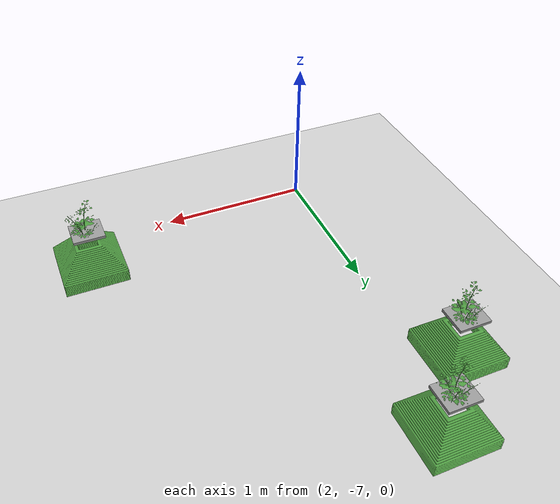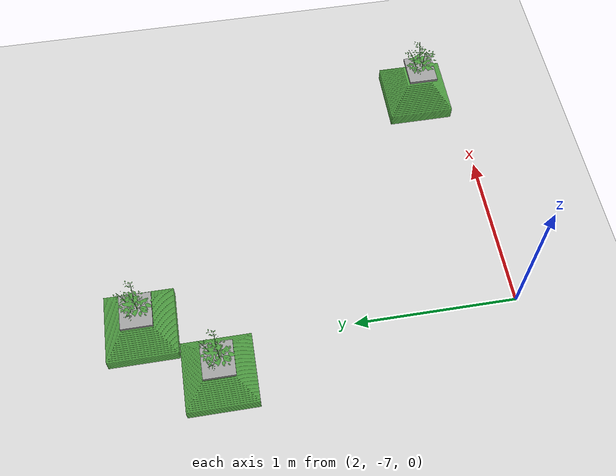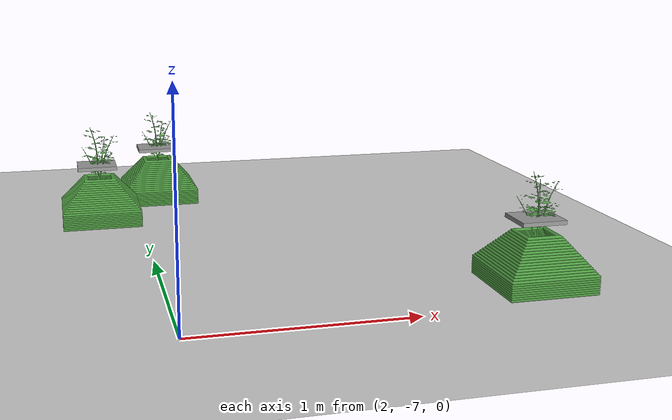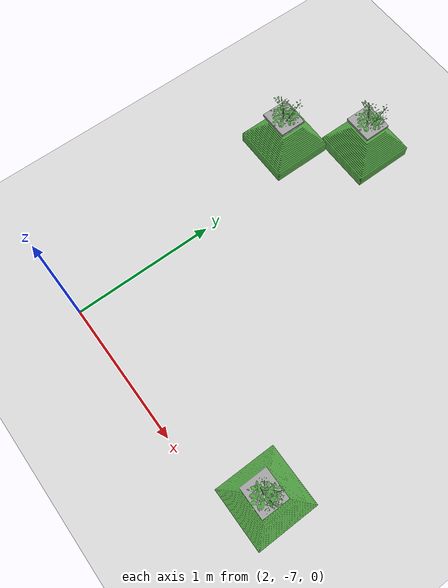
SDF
<sdf version="1.6">
 <world name="default">
  <model name="ground_plane">
   <static>1</static>
   <link name="link">
    <collision name="collision">
     <geometry><plane><normal>0 0 1</normal><size>100 100</size></plane></geometry>
     <surface><friction><ode><mu>100</mu><mu2>50</mu2></ode></friction></surface>
    </collision>
    <visual name="visual">
     <cast_shadows>0</cast_shadows>
     <geometry><plane><normal>0 0 1</normal><size>100 100</size></plane></geometry>
     <material>
      <script><uri>file://media/materials/scripts/gazebo.material</uri><name>Gazebo/Grey</name></script>
     </material>
    </visual>
   </link>
  </model>
  <model name="plant_120">
   <link name="link_0">
    <inertial>
     <mass>1</mass>
     <inertia>
      <ixx>0.0134051</ixx>
      <ixy>0</ixy>
      <ixz>0</ixz>
      <iyy>0.0134051</iyy>
      <iyz>0</iyz>
      <izz>0.0254102</izz>
     </inertia>
    </inertial>
    <gravity>0</gravity>
    <visual name="visual">
     <geometry><mesh><uri>model://square_pot/pot.stl</uri><scale>0.033 0.033 0.02</scale></mesh></geometry>
     <material>
      <lighting>1</lighting>
      <script><uri>file://media/materials/scripts/gazebo.material</uri><name>Gazebo/Grass</name></script>
      <ambient>0.3 0.3 0.3 1</ambient>
      <diffuse>0.7 0.7 0.7 1</diffuse>
      <specular>0.01 0.01 0.01 1</specular>
      <emissive>0 0 0 1</emissive>
      <shader type="vertex"><normal_map>__default__</normal_map></shader>
     </material>
    </visual>
    <collision name="collision">
     <pose>0 0 0.25 0 -0 0</pose>
     <geometry><box><size>0.4 0.4 0.4</size></box></geometry>
     <surface>
      <friction>
       <ode><mu>1</mu><mu2>1</mu2><fdir1>0 0 0</fdir1><slip1>0</slip1><slip2>0</slip2></ode>
       <torsional>
        <coefficient>1</coefficient>
        <patch_radius>0</patch_radius>
        <surface_radius>0</surface_radius>
        <use_patch_radius>1</use_patch_radius>
        <ode><slip>0</slip></ode>
       </torsional>
      </friction>
      <bounce><restitution_coefficient>0</restitution_coefficient><threshold>1e+06</threshold></bounce>
      <contact>
       <collide_without_contact>1</collide_without_contact>
       <collide_without_contact_bitmask>1</collide_without_contact_bitmask>
       <collide_bitmask>1</collide_bitmask>
       <ode>
        <soft_cfm>0</soft_cfm>
        <soft_erp>0.2</soft_erp>
        <kp>1e+13</kp>
        <kd>1</kd>
        <max_vel>0.01</max_vel>
        <min_depth>0</min_depth>
       </ode>
       <bullet>
        <split_impulse>1</split_impulse>
        <split_impulse_penetration_threshold>-0.01</split_impulse_penetration_threshold>
        <soft_cfm>0</soft_cfm>
        <soft_erp>0.2</soft_erp>
        <kp>1e+13</kp>
        <kd>1</kd>
       </bullet>
      </contact>
     </surface>
    </collision>
   </link>
   <link name="link_0_0">
    <pose>-0.011441 -0.008338 0.308474 0 -0 0</pose>
    <inertial>
     <mass>0.000736153</mass>
     <inertia>
      <ixx>2.11165e-06</ixx>
      <ixy>0</ixy>
      <ixz>0</ixz>
      <iyy>2.64382e-06</iyy>
      <iyz>0</iyz>
      <izz>4.70976e-06</izz>
     </inertia>
    </inertial>
    <visual name="visual">
     <geometry><box><size>0.206678 0.18452 0.019291</size></box></geometry>
     <material>
      <lighting>1</lighting>
      <script><uri>file://media/materials/scripts/gazebo.material</uri><name>Gazebo/Grey</name></script>
      <ambient>0.3 0.3 0.3 1</ambient>
      <diffuse>0.7 0.7 0.7 1</diffuse>
      <specular>0.01 0.01 0.01 1</specular>
      <emissive>0 0 0 1</emissive>
     </material>
    </visual>
    <collision name="collision">
     <geometry><box><size>0.206678 0.18452 0.019291</size></box></geometry>
     <surface>
      <friction>
       <ode><mu>1</mu><mu2>1</mu2><fdir1>0 0 0</fdir1><slip1>0</slip1><slip2>0</slip2></ode>
       <torsional>
        <coefficient>1</coefficient>
        <patch_radius>0</patch_radius>
        <surface_radius>0</surface_radius>
        <use_patch_radius>1</use_patch_radius>
        <ode><slip>0</slip></ode>
       </torsional>
      </friction>
      <bounce><restitution_coefficient>0</restitution_coefficient><threshold>1e+06</threshold></bounce>
      <contact>
       <collide_without_contact>0</collide_without_contact>
       <collide_without_contact_bitmask>1</collide_without_contact_bitmask>
       <collide_bitmask>1</collide_bitmask>
       <ode>
        <soft_cfm>0</soft_cfm>
        <soft_erp>0.2</soft_erp>
        <kp>1e+13</kp>
        <kd>1</kd>
        <max_vel>0.01</max_vel>
        <min_depth>0</min_depth>
       </ode>
       <bullet>
        <split_impulse>1</split_impulse>
        <split_impulse_penetration_threshold>-0.01</split_impulse_penetration_threshold>
        <soft_cfm>0</soft_cfm>
        <soft_erp>0.2</soft_erp>
        <kp>1e+13</kp>
        <kd>1</kd>
       </bullet>
      </contact>
     </surface>
    </collision>
   </link>
   <static>1</static>
   <pose>2.1546 -4.74965 0 0 -0 0</pose>
  </model>
  <model name="plant_121">
   <link name="link_0">
    <inertial>
     <mass>1</mass>
     <inertia>
      <ixx>0.0134051</ixx>
      <ixy>0</ixy>
      <ixz>0</ixz>
      <iyy>0.0134051</iyy>
      <iyz>0</iyz>
      <izz>0.0254102</izz>
     </inertia>
    </inertial>
    <gravity>0</gravity>
    <visual name="visual">
     <geometry><mesh><uri>model://square_pot/pot.stl</uri><scale>0.033 0.033 0.02</scale></mesh></geometry>
     <material>
      <lighting>1</lighting>
      <script><uri>file://media/materials/scripts/gazebo.material</uri><name>Gazebo/Grass</name></script>
      <ambient>0.3 0.3 0.3 1</ambient>
      <diffuse>0.7 0.7 0.7 1</diffuse>
      <specular>0.01 0.01 0.01 1</specular>
      <emissive>0 0 0 1</emissive>
      <shader type="vertex"><normal_map>__default__</normal_map></shader>
     </material>
    </visual>
    <collision name="collision">
     <pose>0 0 0.25 0 -0 0</pose>
     <geometry><box><size>0.4 0.4 0.4</size></box></geometry>
     <surface>
      <friction>
       <ode><mu>1</mu><mu2>1</mu2><fdir1>0 0 0</fdir1><slip1>0</slip1><slip2>0</slip2></ode>
       <torsional>
        <coefficient>1</coefficient>
        <patch_radius>0</patch_radius>
        <surface_radius>0</surface_radius>
        <use_patch_radius>1</use_patch_radius>
        <ode><slip>0</slip></ode>
       </torsional>
      </friction>
      <bounce><restitution_coefficient>0</restitution_coefficient><threshold>1e+06</threshold></bounce>
      <contact>
       <collide_without_contact>1</collide_without_contact>
       <collide_without_contact_bitmask>1</collide_without_contact_bitmask>
       <collide_bitmask>1</collide_bitmask>
       <ode>
        <soft_cfm>0</soft_cfm>
        <soft_erp>0.2</soft_erp>
        <kp>1e+13</kp>
        <kd>1</kd>
        <max_vel>0.01</max_vel>
        <min_depth>0</min_depth>
       </ode>
       <bullet>
        <split_impulse>1</split_impulse>
        <split_impulse_penetration_threshold>-0.01</split_impulse_penetration_threshold>
        <soft_cfm>0</soft_cfm>
        <soft_erp>0.2</soft_erp>
        <kp>1e+13</kp>
        <kd>1</kd>
       </bullet>
      </contact>
     </surface>
    </collision>
   </link>
   <link name="link_0_0">
    <pose>-0.011441 -0.008338 0.308474 0 -0 0</pose>
    <inertial>
     <mass>0.000736153</mass>
     <inertia>
      <ixx>2.11165e-06</ixx>
      <ixy>0</ixy>
      <ixz>0</ixz>
      <iyy>2.64382e-06</iyy>
      <iyz>0</iyz>
      <izz>4.70976e-06</izz>
     </inertia>
    </inertial>
    <visual name="visual">
     <geometry><box><size>0.206678 0.18452 0.019291</size></box></geometry>
     <material>
      <lighting>1</lighting>
      <script><uri>file://media/materials/scripts/gazebo.material</uri><name>Gazebo/Grey</name></script>
      <ambient>0.3 0.3 0.3 1</ambient>
      <diffuse>0.7 0.7 0.7 1</diffuse>
      <specular>0.01 0.01 0.01 1</specular>
      <emissive>0 0 0 1</emissive>
     </material>
    </visual>
    <collision name="collision">
     <geometry><box><size>0.206678 0.18452 0.019291</size></box></geometry>
     <surface>
      <friction>
       <ode><mu>1</mu><mu2>1</mu2><fdir1>0 0 0</fdir1><slip1>0</slip1><slip2>0</slip2></ode>
       <torsional>
        <coefficient>1</coefficient>
        <patch_radius>0</patch_radius>
        <surface_radius>0</surface_radius>
        <use_patch_radius>1</use_patch_radius>
        <ode><slip>0</slip></ode>
       </torsional>
      </friction>
      <bounce><restitution_coefficient>0</restitution_coefficient><threshold>1e+06</threshold></bounce>
      <contact>
       <collide_without_contact>0</collide_without_contact>
       <collide_without_contact_bitmask>1</collide_without_contact_bitmask>
       <collide_bitmask>1</collide_bitmask>
       <ode>
        <soft_cfm>0</soft_cfm>
        <soft_erp>0.2</soft_erp>
        <kp>1e+13</kp>
        <kd>1</kd>
        <max_vel>0.01</max_vel>
        <min_depth>0</min_depth>
       </ode>
       <bullet>
        <split_impulse>1</split_impulse>
        <split_impulse_penetration_threshold>-0.01</split_impulse_penetration_threshold>
        <soft_cfm>0</soft_cfm>
        <soft_erp>0.2</soft_erp>
        <kp>1e+13</kp>
        <kd>1</kd>
       </bullet>
      </contact>
     </surface>
    </collision>
   </link>
   <static>1</static>
   <pose>1.79079 -5.17724 0 0 -0 0</pose>
  </model>
  <model name="plant_125">
   <link name="link_0">
    <inertial>
     <mass>1</mass>
     <inertia>
      <ixx>0.0134051</ixx>
      <ixy>0</ixy>
      <ixz>0</ixz>
      <iyy>0.0134051</iyy>
      <iyz>0</iyz>
      <izz>0.0254102</izz>
     </inertia>
    </inertial>
    <gravity>0</gravity>
    <visual name="visual">
     <geometry><mesh><uri>model://square_pot/pot.stl</uri><scale>0.033 0.033 0.02</scale></mesh></geometry>
     <material>
      <lighting>1</lighting>
      <script><uri>file://media/materials/scripts/gazebo.material</uri><name>Gazebo/Grass</name></script>
      <ambient>0.3 0.3 0.3 1</ambient>
      <diffuse>0.7 0.7 0.7 1</diffuse>
      <specular>0.01 0.01 0.01 1</specular>
      <emissive>0 0 0 1</emissive>
      <shader type="vertex"><normal_map>__default__</normal_map></shader>
     </material>
    </visual>
    <collision name="collision">
     <pose>0 0 0.25 0 -0 0</pose>
     <geometry><box><size>0.4 0.4 0.4</size></box></geometry>
     <surface>
      <friction>
       <ode><mu>1</mu><mu2>1</mu2><fdir1>0 0 0</fdir1><slip1>0</slip1><slip2>0</slip2></ode>
       <torsional>
        <coefficient>1</coefficient>
        <patch_radius>0</patch_radius>
        <surface_radius>0</surface_radius>
        <use_patch_radius>1</use_patch_radius>
        <ode><slip>0</slip></ode>
       </torsional>
      </friction>
      <bounce><restitution_coefficient>0</restitution_coefficient><threshold>1e+06</threshold></bounce>
      <contact>
       <collide_without_contact>1</collide_without_contact>
       <collide_without_contact_bitmask>1</collide_without_contact_bitmask>
       <collide_bitmask>1</collide_bitmask>
       <ode>
        <soft_cfm>0</soft_cfm>
        <soft_erp>0.2</soft_erp>
        <kp>1e+13</kp>
        <kd>1</kd>
        <max_vel>0.01</max_vel>
        <min_depth>0</min_depth>
       </ode>
       <bullet>
        <split_impulse>1</split_impulse>
        <split_impulse_penetration_threshold>-0.01</split_impulse_penetration_threshold>
        <soft_cfm>0</soft_cfm>
        <soft_erp>0.2</soft_erp>
        <kp>1e+13</kp>
        <kd>1</kd>
       </bullet>
      </contact>
     </surface>
    </collision>
   </link>
   <link name="link_0_0">
    <pose>-0.011441 -0.008338 0.308474 0 -0 0</pose>
    <inertial>
     <mass>0.000736153</mass>
     <inertia>
      <ixx>2.11165e-06</ixx>
      <ixy>0</ixy>
      <ixz>0</ixz>
      <iyy>2.64382e-06</iyy>
      <iyz>0</iyz>
      <izz>4.70976e-06</izz>
     </inertia>
    </inertial>
    <visual name="visual">
     <geometry><box><size>0.206678 0.18452 0.019291</size></box></geometry>
     <material>
      <lighting>1</lighting>
      <script><uri>file://media/materials/scripts/gazebo.material</uri><name>Gazebo/Grey</name></script>
      <ambient>0.3 0.3 0.3 1</ambient>
      <diffuse>0.7 0.7 0.7 1</diffuse>
      <specular>0.01 0.01 0.01 1</specular>
      <emissive>0 0 0 1</emissive>
     </material>
    </visual>
    <collision name="collision">
     <geometry><box><size>0.206678 0.18452 0.019291</size></box></geometry>
     <surface>
      <friction>
       <ode><mu>1</mu><mu2>1</mu2><fdir1>0 0 0</fdir1><slip1>0</slip1><slip2>0</slip2></ode>
       <torsional>
        <coefficient>1</coefficient>
        <patch_radius>0</patch_radius>
        <surface_radius>0</surface_radius>
        <use_patch_radius>1</use_patch_radius>
        <ode><slip>0</slip></ode>
       </torsional>
      </friction>
      <bounce><restitution_coefficient>0</restitution_coefficient><threshold>1e+06</threshold></bounce>
      <contact>
       <collide_without_contact>0</collide_without_contact>
       <collide_without_contact_bitmask>1</collide_without_contact_bitmask>
       <collide_bitmask>1</collide_bitmask>
       <ode>
        <soft_cfm>0</soft_cfm>
        <soft_erp>0.2</soft_erp>
        <kp>1e+13</kp>
        <kd>1</kd>
        <max_vel>0.01</max_vel>
        <min_depth>0</min_depth>
       </ode>
       <bullet>
        <split_impulse>1</split_impulse>
        <split_impulse_penetration_threshold>-0.01</split_impulse_penetration_threshold>
        <soft_cfm>0</soft_cfm>
        <soft_erp>0.2</soft_erp>
        <kp>1e+13</kp>
        <kd>1</kd>
       </bullet>
      </contact>
     </surface>
    </collision>
   </link>
   <static>1</static>
   <pose>3.62325 -6.73806 0 0 -0 0</pose>
  </model>
 </world>
</sdf>
